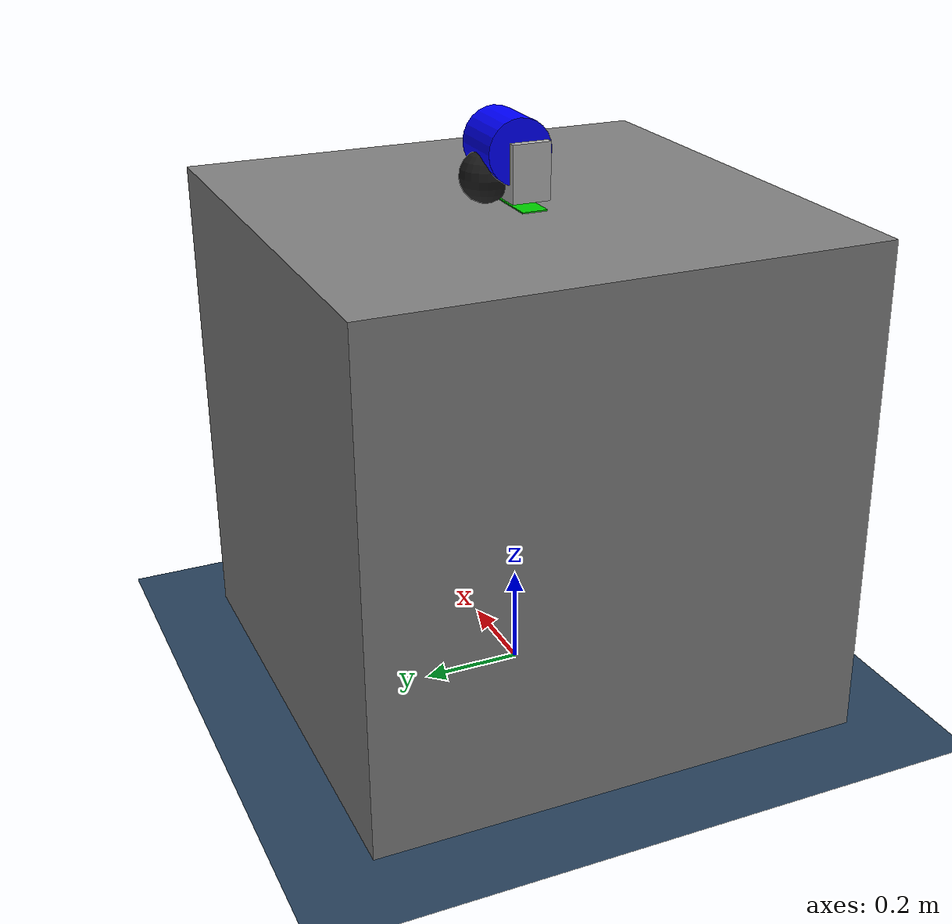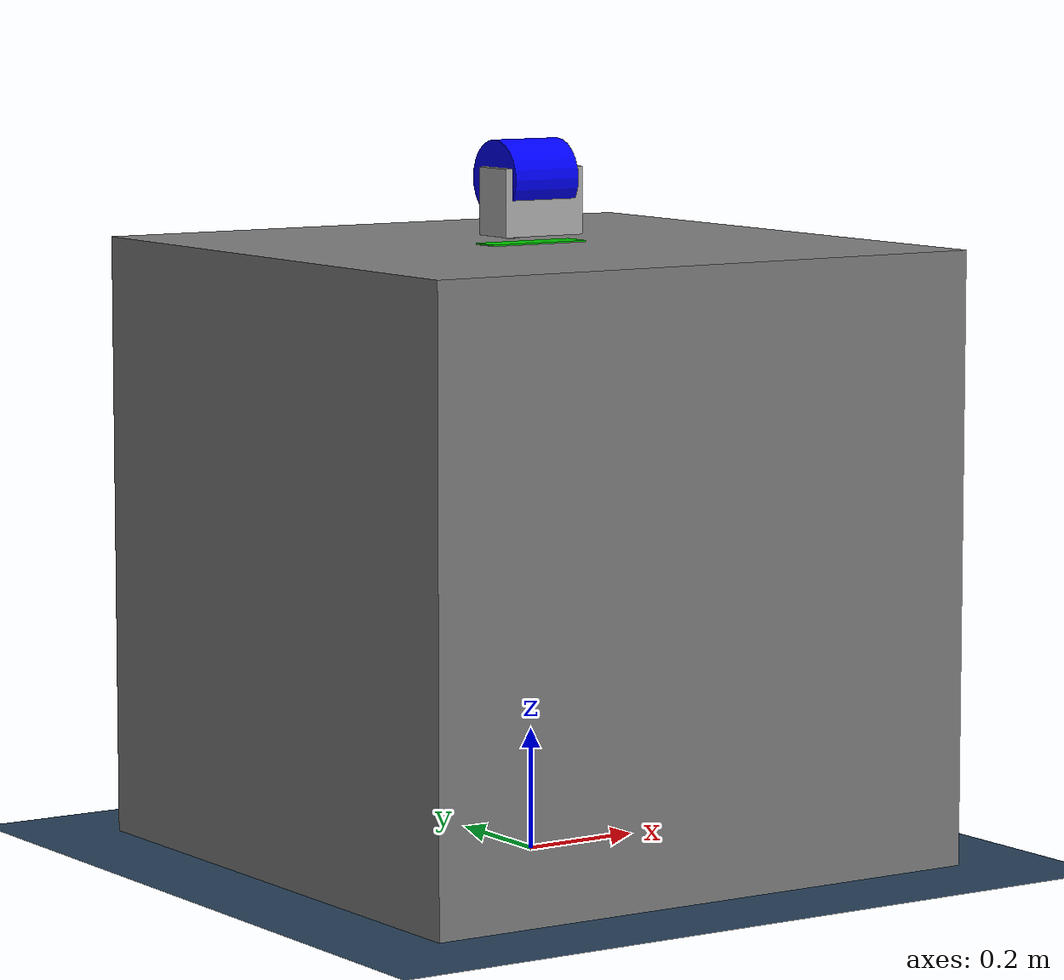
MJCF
<mujoco model="ReachBot">

    <visual>
        <map force="0.1" zfar="30"/>
        <rgba haze="0.15 0.25 0.35 1"/>
        <global offwidth="2560" offheight="1440" elevation="-20" azimuth="120"/>
    </visual>

    <option timestep="0.01"/>
    <statistic center="0 0 0.7"/>

    <asset>
        <texture type="skybox" builtin="gradient" rgb1=".3 .5 .7" rgb2="0 0 0" width="32" height="512"/>
        <texture name="body" type="cube" builtin="flat" mark="cross" width="128" height="128" rgb1="0.8 0.6 0.4" rgb2="0.8 0.6 0.4" markrgb="1 1 1"/>
        <material name="body" texture="body" texuniform="true" rgba="0.8 0.6 .4 1"/>
        <texture name="grid" type="2d" builtin="checker" width="512" height="512" rgb1=".1 .2 .3" rgb2=".2 .3 .4"/>
        <material name="grid" texture="grid" texrepeat="1 1" texuniform="true" reflectance="0"/>
    </asset>

    <worldbody>
        <light directional="true" pos="0 0 5" dir="0 0 -1"/>
        <geom name="floor" size="0 0 .05" type="plane" material="grid" contype="5" condim="3"/>
        <body name="Anymal" pos="0 0 0.5">
            <geom name="base" size="0.5 0.5 0.5" type="box" pos="0 0 0" mass="30"/>
            <body name="arm1" pos="0 0 0.5">
                <body name="Base1" pos="0 0 0">
                    <geom name="Base1" size=".09 0.02515 0.0025" type="box" pos="0 0 0" rgba="0 .8 0 1" contype="1" conaffinity="5"/>
                    <body name="Motor11" pos="0 0 0.069311">
                        <joint name="revolver11" type="hinge" axis="0 0 1" damping="50"/>
                        <geom name="Motor11" size="0.075 0.0381 0.055" type="box" pos="0 0 0" rgba="0.7 0.7 0.7 1" contype="2" conaffinity="5" mass="0.377"/>
                        <body name="Motor12" pos="0 0 0.036176">
                            <site name="motorSiteA1" pos="0 0 -0.0525" size="0.0001"/>
                            <site name="motorSiteB1" pos="0.025 0 -0.0525" size="0.0001"/>
                            <site name="motorSiteC1" pos="-0.025 0 -0.0525" size="0.0001"/>
                            <geom name="Motor12" size="0.06313 0.0605" pos="0 0.0158975 0" euler="0 90 0" type="cylinder" rgba="0 0 1 1" contype="3" conaffinity="5" mass="1.046"/>
                            <joint name="revolver12" type="hinge" axis="1 0 0" pos="0 0 0" damping="50"/>
                            <body name="boom1" pos="0 0.059837 -0.0525">
                                <geom name="boom1" size="0.05" type="sphere" rgba="0.1 0.1 0.1 1" contype="4" conaffinity="5" friction="0.1 0 0" mass="0.5"/>
                                <joint name="prismatic1" type="slide" axis="0 1 0" damping="40"/>
                                <site name="boomSiteA1" pos="0 0.034837 0" size="0.0001"/>
                                <site name="boomSiteB1" pos="0.025 0.034837 0" size="0.0001"/>
                                <site name="boomSiteC1" pos="-0.025 0.034837 0" size="0.0001"/>
                            </body>
                        </body>
                    </body>
                </body>
            </body>
        </body>
    </worldbody>

    <tendon>
        <spatial name="boomvisualA1" width=".01" rgba="0.1 0.1 0.1 1">
            <site site="boomSiteA1"/>
            <site site="motorSiteA1"/>
        </spatial>
        <spatial name="boomvisualB1" width=".01" rgba="0.1 0.1 0.1 1">
            <site site="boomSiteB1"/>
            <site site="motorSiteB1"/>
        </spatial>
        <spatial name="boomvisualC1" width=".01" rgba="0.1 0.1 0.1 1">
            <site site="boomSiteC1"/>
            <site site="motorSiteC1"/>
        </spatial>
    </tendon>

    <actuator>
        <position name="motor11p" joint="revolver11" kp="100" ctrlrange="-3.2 3.2" forcelimited="true" forcerange="-25 25"/>
        <position name="motor12p" joint="revolver12" kp="100" ctrlrange="0 3.2" forcelimited="true" forcerange="-25 25"/>
        <position name="motor13p" joint="prismatic1" kp="120" ctrlrange="0 1.7" forcelimited="true" forcerange="-476 476"/>
    </actuator>

</mujoco>
